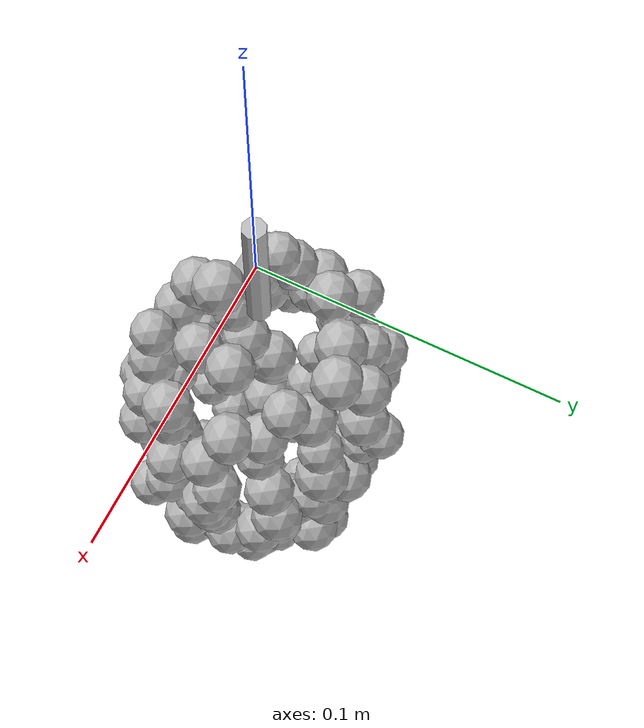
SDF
<?xml version='1.0' encoding='utf-8'?>
<sdf version="1.6">
  <model name="grape_bunch_green_thompson">
    <link name="bunch">
      <gravity>false</gravity>
      <inertial>
        <pose>-0.000303978 -0.000209901 -0.117999 0 0 0</pose>
        <mass>0.15</mass>
        <inertia>
          <ixx>0.000590714</ixx>
          <iyy>0.000589551</iyy>
          <izz>0.000270263</izz>
          <ixy>0</ixy>
          <ixz>0</ixz>
          <iyz>0</iyz>
        </inertia>
      </inertial>
      <collision name="berries">
        <pose>-0.000303978 -0.000209901 -0.117999 0 0 0</pose>
        <geometry>
          <box>
            <size>0.10375 0.104197 0.190788</size>
          </box>
        </geometry>
      </collision>
      <visual name="berries">
        <geometry>
          <mesh>
            <uri>model://grape_bunch_green_thompson/meshes/berries.obj</uri>
          </mesh>
        </geometry>
      </visual>
      <visual name="stem">
        <geometry>
          <mesh>
            <uri>model://grape_bunch_green_thompson/meshes/stem.obj</uri>
          </mesh>
        </geometry>
      </visual>
    </link>
  </model>
</sdf>
